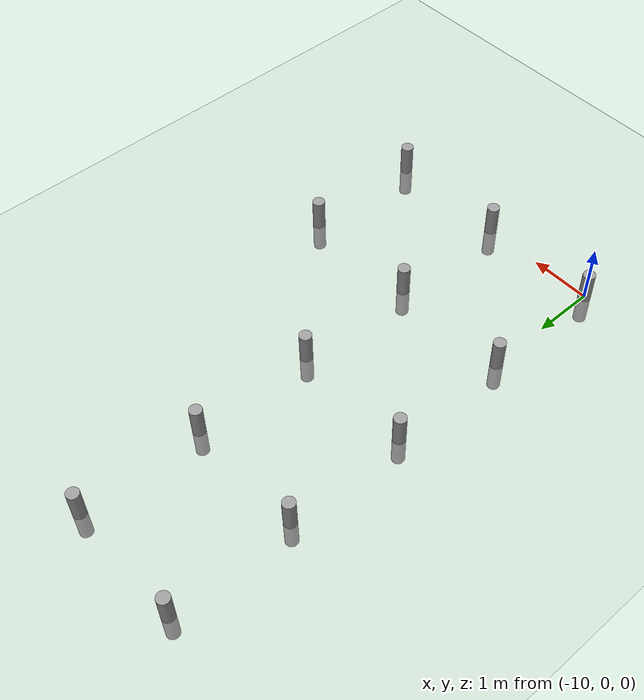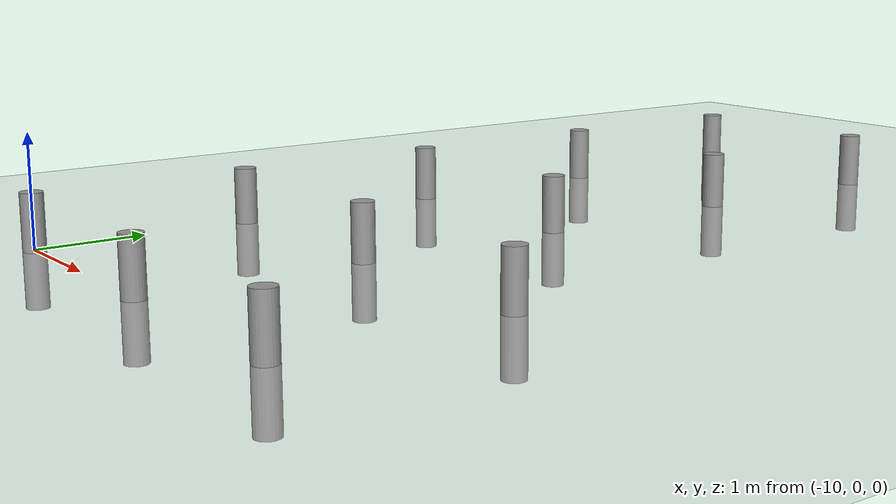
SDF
<sdf version="1.5">
 <world name="default">
  <model name="ground_plane">
   <static>1</static>
   <link name="link">
    <collision name="collision">
     <geometry><plane><normal>0 0 1</normal><size>100 100</size></plane></geometry>
     <surface><friction><ode><mu>100</mu><mu2>50</mu2></ode></friction></surface>
    </collision>
    <visual name="visual">
     <cast_shadows>0</cast_shadows>
     <geometry><plane><normal>0 0 1</normal><size>100 100</size></plane></geometry>
     <material>
      <script><uri>file://media/materials/scripts/gazebo.material</uri><name>Gazebo/Grey</name></script>
     </material>
    </visual>
   </link>
  </model>
  <model name="unit_cylinder_-10_0">
   <pose>-10 0 0 0 -0 1.7e-05</pose>
   <link name="link">
    <inertial>
     <mass>1</mass>
     <inertia><ixx>1</ixx><ixy>0</ixy><ixz>0</ixz><iyy>1</iyy><iyz>0</iyz><izz>1</izz></inertia>
    </inertial>
    <collision name="collision">
     <geometry><cylinder><radius>0.1</radius><length>1</length></cylinder></geometry>
    </collision>
    <visual name="visual">
     <geometry><cylinder><radius>0.1</radius><length>1</length></cylinder></geometry>
     <material>
      <script><uri>file://media/materials/scripts/gazebo.material</uri><name>Gazebo/Grey</name></script>
     </material>
    </visual>
   </link>
  </model>
  <model name="unit_cylinder_-10_2">
   <pose>-10 2 0 0 -0 1.7e-05</pose>
   <link name="link">
    <inertial>
     <mass>1</mass>
     <inertia><ixx>1</ixx><ixy>0</ixy><ixz>0</ixz><iyy>1</iyy><iyz>0</iyz><izz>1</izz></inertia>
    </inertial>
    <collision name="collision">
     <geometry><cylinder><radius>0.1</radius><length>1</length></cylinder></geometry>
    </collision>
    <visual name="visual">
     <geometry><cylinder><radius>0.1</radius><length>1</length></cylinder></geometry>
     <material>
      <script><uri>file://media/materials/scripts/gazebo.material</uri><name>Gazebo/Grey</name></script>
     </material>
    </visual>
   </link>
  </model>
  <model name="unit_cylinder_-10_4">
   <pose>-10 4 0 0 -0 1.7e-05</pose>
   <link name="link">
    <inertial>
     <mass>1</mass>
     <inertia><ixx>1</ixx><ixy>0</ixy><ixz>0</ixz><iyy>1</iyy><iyz>0</iyz><izz>1</izz></inertia>
    </inertial>
    <collision name="collision">
     <geometry><cylinder><radius>0.1</radius><length>1</length></cylinder></geometry>
    </collision>
    <visual name="visual">
     <geometry><cylinder><radius>0.1</radius><length>1</length></cylinder></geometry>
     <material>
      <script><uri>file://media/materials/scripts/gazebo.material</uri><name>Gazebo/Grey</name></script>
     </material>
    </visual>
   </link>
  </model>
  <model name="unit_cylinder_-10_6">
   <pose>-10 6 0 0 -0 1.7e-05</pose>
   <link name="link">
    <inertial>
     <mass>1</mass>
     <inertia><ixx>1</ixx><ixy>0</ixy><ixz>0</ixz><iyy>1</iyy><iyz>0</iyz><izz>1</izz></inertia>
    </inertial>
    <collision name="collision">
     <geometry><cylinder><radius>0.1</radius><length>1</length></cylinder></geometry>
    </collision>
    <visual name="visual">
     <geometry><cylinder><radius>0.1</radius><length>1</length></cylinder></geometry>
     <material>
      <script><uri>file://media/materials/scripts/gazebo.material</uri><name>Gazebo/Grey</name></script>
     </material>
    </visual>
   </link>
  </model>
  <model name="unit_cylinder_-10_8">
   <pose>-10 8 0 0 -0 1.7e-05</pose>
   <link name="link">
    <inertial>
     <mass>1</mass>
     <inertia><ixx>1</ixx><ixy>0</ixy><ixz>0</ixz><iyy>1</iyy><iyz>0</iyz><izz>1</izz></inertia>
    </inertial>
    <collision name="collision">
     <geometry><cylinder><radius>0.1</radius><length>1</length></cylinder></geometry>
    </collision>
    <visual name="visual">
     <geometry><cylinder><radius>0.1</radius><length>1</length></cylinder></geometry>
     <material>
      <script><uri>file://media/materials/scripts/gazebo.material</uri><name>Gazebo/Grey</name></script>
     </material>
    </visual>
   </link>
  </model>
  <model name="unit_cylinder_-8_0">
   <pose>-8 0 0 0 -0 1.7e-05</pose>
   <link name="link">
    <inertial>
     <mass>1</mass>
     <inertia><ixx>1</ixx><ixy>0</ixy><ixz>0</ixz><iyy>1</iyy><iyz>0</iyz><izz>1</izz></inertia>
    </inertial>
    <collision name="collision">
     <geometry><cylinder><radius>0.1</radius><length>1</length></cylinder></geometry>
    </collision>
    <visual name="visual">
     <geometry><cylinder><radius>0.1</radius><length>1</length></cylinder></geometry>
     <material>
      <script><uri>file://media/materials/scripts/gazebo.material</uri><name>Gazebo/Grey</name></script>
     </material>
    </visual>
   </link>
  </model>
  <model name="unit_cylinder_-8_2">
   <pose>-8 2 0 0 -0 1.7e-05</pose>
   <link name="link">
    <inertial>
     <mass>1</mass>
     <inertia><ixx>1</ixx><ixy>0</ixy><ixz>0</ixz><iyy>1</iyy><iyz>0</iyz><izz>1</izz></inertia>
    </inertial>
    <collision name="collision">
     <geometry><cylinder><radius>0.1</radius><length>1</length></cylinder></geometry>
    </collision>
    <visual name="visual">
     <geometry><cylinder><radius>0.1</radius><length>1</length></cylinder></geometry>
     <material>
      <script><uri>file://media/materials/scripts/gazebo.material</uri><name>Gazebo/Grey</name></script>
     </material>
    </visual>
   </link>
  </model>
  <model name="unit_cylinder_-8_4">
   <pose>-8 4 0 0 -0 1.7e-05</pose>
   <link name="link">
    <inertial>
     <mass>1</mass>
     <inertia><ixx>1</ixx><ixy>0</ixy><ixz>0</ixz><iyy>1</iyy><iyz>0</iyz><izz>1</izz></inertia>
    </inertial>
    <collision name="collision">
     <geometry><cylinder><radius>0.1</radius><length>1</length></cylinder></geometry>
    </collision>
    <visual name="visual">
     <geometry><cylinder><radius>0.1</radius><length>1</length></cylinder></geometry>
     <material>
      <script><uri>file://media/materials/scripts/gazebo.material</uri><name>Gazebo/Grey</name></script>
     </material>
    </visual>
   </link>
  </model>
  <model name="unit_cylinder_-8_6">
   <pose>-8 6 0 0 -0 1.7e-05</pose>
   <link name="link">
    <inertial>
     <mass>1</mass>
     <inertia><ixx>1</ixx><ixy>0</ixy><ixz>0</ixz><iyy>1</iyy><iyz>0</iyz><izz>1</izz></inertia>
    </inertial>
    <collision name="collision">
     <geometry><cylinder><radius>0.1</radius><length>1</length></cylinder></geometry>
    </collision>
    <visual name="visual">
     <geometry><cylinder><radius>0.1</radius><length>1</length></cylinder></geometry>
     <material>
      <script><uri>file://media/materials/scripts/gazebo.material</uri><name>Gazebo/Grey</name></script>
     </material>
    </visual>
   </link>
  </model>
  <model name="unit_cylinder_-8_8">
   <pose>-8 8 0 0 -0 1.7e-05</pose>
   <link name="link">
    <inertial>
     <mass>1</mass>
     <inertia><ixx>1</ixx><ixy>0</ixy><ixz>0</ixz><iyy>1</iyy><iyz>0</iyz><izz>1</izz></inertia>
    </inertial>
    <collision name="collision">
     <geometry><cylinder><radius>0.1</radius><length>1</length></cylinder></geometry>
    </collision>
    <visual name="visual">
     <geometry><cylinder><radius>0.1</radius><length>1</length></cylinder></geometry>
     <material>
      <script><uri>file://media/materials/scripts/gazebo.material</uri><name>Gazebo/Grey</name></script>
     </material>
    </visual>
   </link>
  </model>
  <model name="unit_cylinder_-6_0">
   <pose>-6 0 0 0 -0 1.7e-05</pose>
   <link name="link">
    <inertial>
     <mass>1</mass>
     <inertia><ixx>1</ixx><ixy>0</ixy><ixz>0</ixz><iyy>1</iyy><iyz>0</iyz><izz>1</izz></inertia>
    </inertial>
    <collision name="collision">
     <geometry><cylinder><radius>0.1</radius><length>1</length></cylinder></geometry>
    </collision>
    <visual name="visual">
     <geometry><cylinder><radius>0.1</radius><length>1</length></cylinder></geometry>
     <material>
      <script><uri>file://media/materials/scripts/gazebo.material</uri><name>Gazebo/Grey</name></script>
     </material>
    </visual>
   </link>
  </model>
  <model name="unit_cylinder_-6_2">
   <pose>-6 2 0 0 -0 1.7e-05</pose>
   <link name="link">
    <inertial>
     <mass>1</mass>
     <inertia><ixx>1</ixx><ixy>0</ixy><ixz>0</ixz><iyy>1</iyy><iyz>0</iyz><izz>1</izz></inertia>
    </inertial>
    <collision name="collision">
     <geometry><cylinder><radius>0.1</radius><length>1</length></cylinder></geometry>
    </collision>
    <visual name="visual">
     <geometry><cylinder><radius>0.1</radius><length>1</length></cylinder></geometry>
     <material>
      <script><uri>file://media/materials/scripts/gazebo.material</uri><name>Gazebo/Grey</name></script>
     </material>
    </visual>
   </link>
  </model>
 </world>
</sdf>
